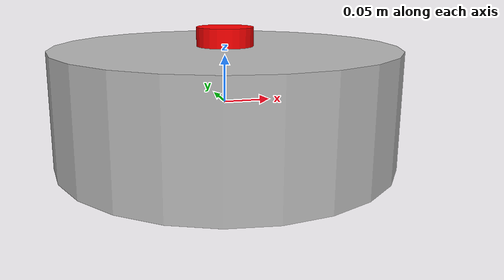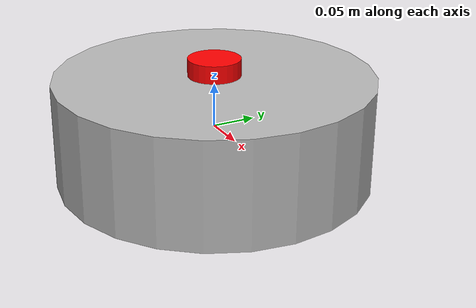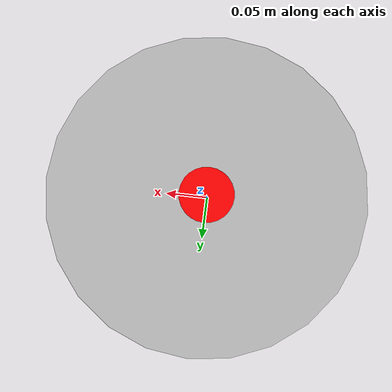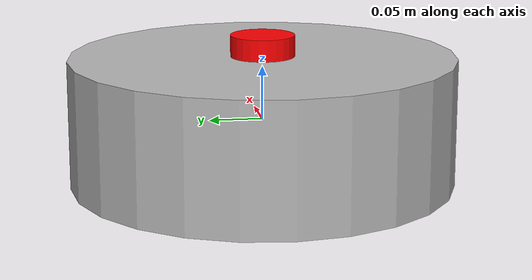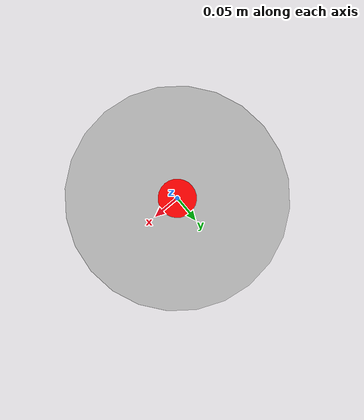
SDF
<?xml version="1.0" ?>
<sdf version="1.9">
  <model name="uav_simple">
    <static>false</static>

    <link name="base_link">
      <pose>0 0 0 0 0 0</pose>

      <inertial>
        <mass>1.0</mass>
        <inertia>
          <ixx>2.0</ixx> <ixy>0.0</ixy> <ixz>0.0</ixz>
          <iyy>2.0</iyy> <iyz>0.0</iyz>
          <izz>0.2</izz>
        </inertia>
      </inertial>

      <velocity_decay>
        <linear>0.1</linear>
        <angular>40.0</angular>
      </velocity_decay>

      <collision name="collision">
        <geometry>
          <cylinder>
            <radius>0.18</radius>
            <length>0.12</length>
          </cylinder>
        </geometry>
      </collision>

      <visual name="visual">
        <geometry>
          <cylinder>
            <radius>0.18</radius>
            <length>0.12</length>
          </cylinder>
        </geometry>
      </visual>
    </link>

    <link name="lidar_link">
      <pose>0 0 0.07 0 0 0</pose>

      <inertial>
        <mass>0.05</mass>
        <inertia>
          <ixx>0.0002</ixx> <ixy>0.0</ixy> <ixz>0.0</ixz>
          <iyy>0.0002</iyy> <iyz>0.0</iyz>
          <izz>0.0002</izz>
        </inertia>
      </inertial>

      <collision name="lidar_collision">
        <geometry>
          <cylinder>
            <radius>0.03</radius>
            <length>0.02</length>
          </cylinder>
        </geometry>
      </collision>

      <visual name="lidar_visual">
        <geometry>
          <cylinder>
            <radius>0.03</radius>
            <length>0.02</length>
          </cylinder>
        </geometry>
        <material>
          <ambient>1 0 0 1</ambient>
          <diffuse>1 0 0 1</diffuse>
          <specular>0.2 0.2 0.2 1</specular>
        </material>
      </visual>

      <sensor name="gpu_lidar" type="gpu_lidar">
        <pose>0 0 0 0 0 0</pose>
        <always_on>true</always_on>
        <update_rate>20</update_rate>
        <visualize>true</visualize>
        <topic>/scan</topic>
        <ray>
          <scan>
            <horizontal>
              <samples>90</samples>
              <resolution>1</resolution>
              <min_angle>-3.14159</min_angle>
              <max_angle>3.07178</max_angle>
            </horizontal>
          </scan>
          <range>
            <min>0.1</min>
            <max>50.0</max>
            <resolution>0.01</resolution>
          </range>
        </ray>
      </sensor>
    </link>

    <joint name="lidar_fixed_joint" type="fixed">
      <parent>base_link</parent>
      <child>lidar_link</child>
    </joint>

    <plugin filename="gz-sim-pose-publisher-system" name="gz::sim::v8::systems::PosePublisher">
      <publish_link_pose>false</publish_link_pose>
      <publish_collision_pose>false</publish_collision_pose>
      <publish_visual_pose>true</publish_visual_pose>
      <publish_nested_model_pose>true</publish_nested_model_pose>
    </plugin>

    <plugin filename="gz-sim-odometry-publisher-system" name="gz::sim::v8::systems::OdometryPublisher">
      <odom_publish_frequency>50</odom_publish_frequency>
      <dimensions>3</dimensions>
      <odom_topic>/model/uav1/odometry</odom_topic>
      <tf_topic>/tf</tf_topic>
    </plugin>

    <plugin filename="gz-sim-velocity-control-system" name="gz::sim::v8::systems::VelocityControl">
      <cmd_vel_topic>/cmd_vel</cmd_vel_topic>
      <initial_linear_velocity_x>0.0</initial_linear_velocity_x>
      <initial_linear_velocity_y>0.0</initial_linear_velocity_y>
      <initial_linear_velocity_z>0.0</initial_linear_velocity_z>
      <initial_angular_velocity_x>0.0</initial_angular_velocity_x>
      <initial_angular_velocity_y>0.0</initial_angular_velocity_y>
      <initial_angular_velocity_z>0.0</initial_angular_velocity_z>
    </plugin>

  </model>
</sdf>
